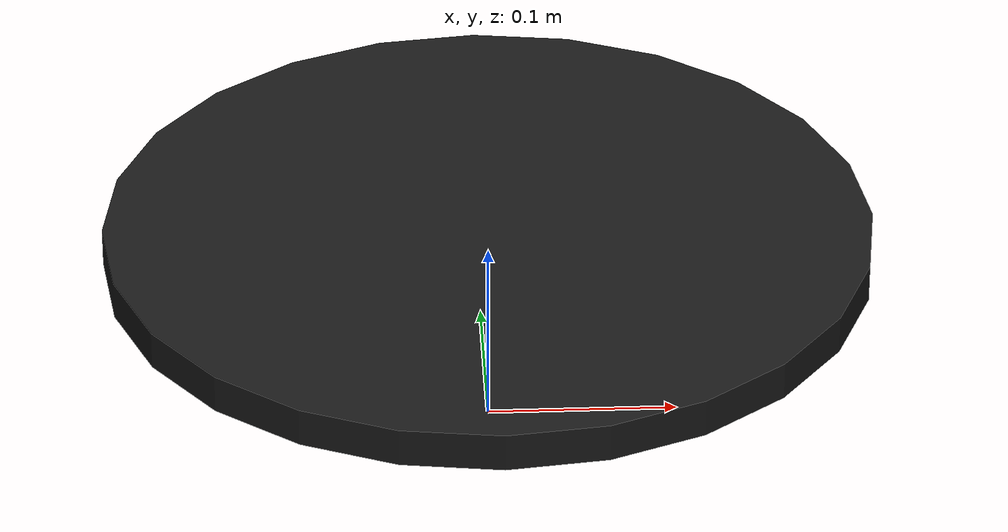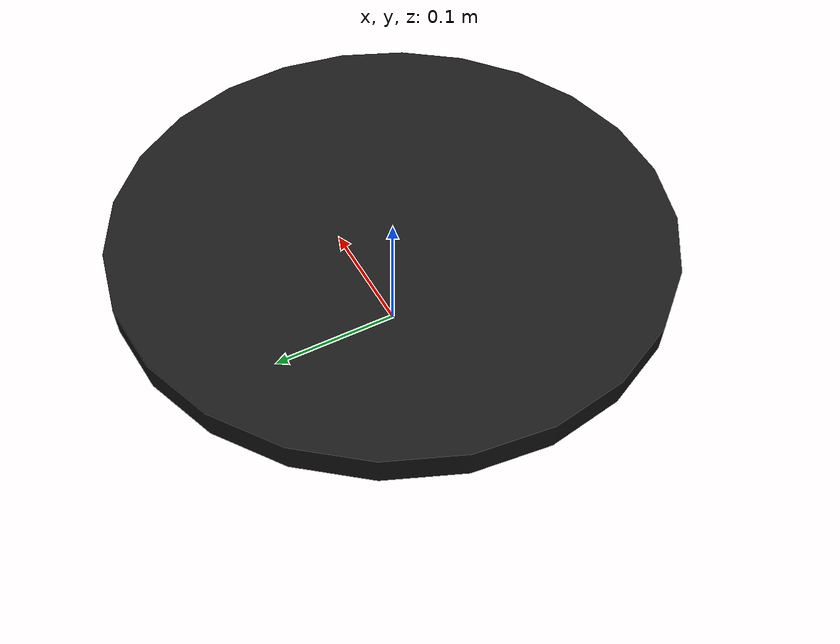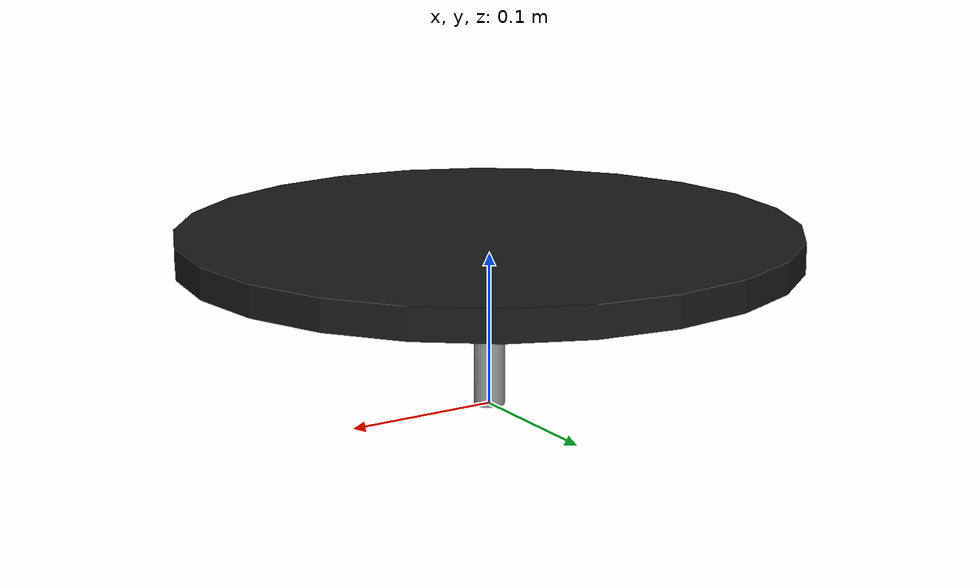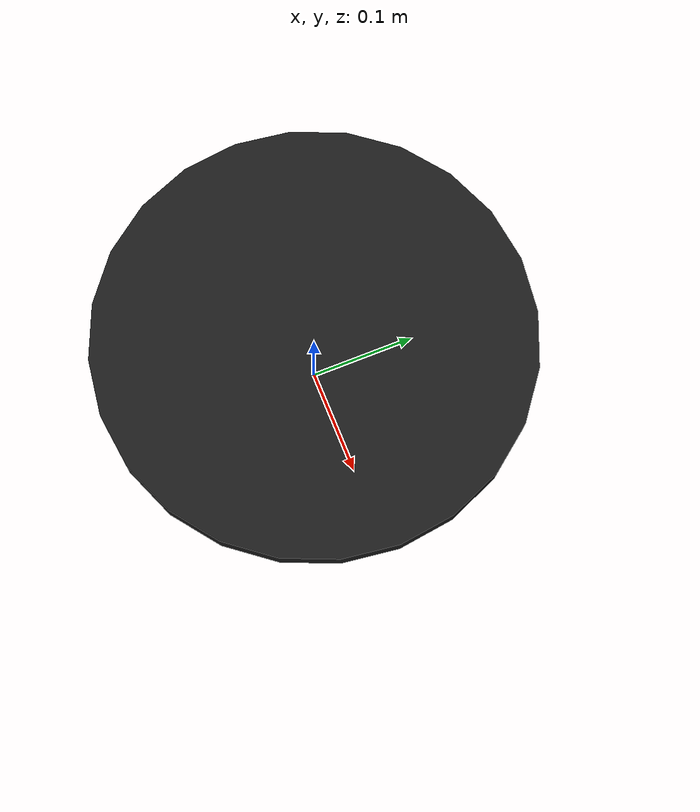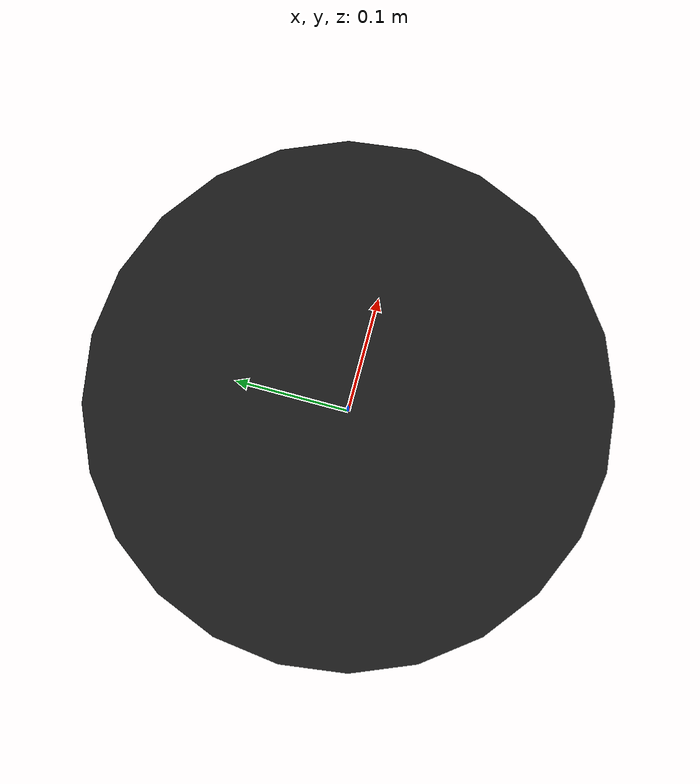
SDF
<?xml version="1.0"?>
<sdf version="1.7">
  <world name="plate_world">

    <model name="plate_model">

      <!-- Plate -->
      <link name="plate">
        <pose>0 0 0 0 0 0</pose>

        <inertial>
          <!-- CoM of the disk is 0.107 above the pivot/joint origin -->
          <pose>0 0 0.107 0 0 0</pose>
          <mass>0.85</mass>
          <inertia>
            <ixx>0.01029</ixx>
            <ixy>0</ixy>
            <ixz>0</ixz>
            <iyy>0.01029</iyy>
            <iyz>0</iyz>
            <izz>0.02057</izz>
          </inertia>
        </inertial>

        <visual name="plate_visual">
          <pose>0 0 0.107 0 0 0</pose>
          <geometry>
            <cylinder>
              <radius>0.2</radius>
              <length>0.02</length>
            </cylinder>
          </geometry>
          <material><diffuse>0.1 0.1 0.1 1</diffuse></material>
        </visual>

        <!-- Optional: visualize the rod so you can see the geometry -->
        <visual name="rod_visual">
          <pose>0 0 0.0535 0 0 0</pose>
          <geometry>
            <cylinder>
              <radius>0.01</radius>
              <length>0.107</length>
            </cylinder>
          </geometry>
          <material><diffuse>0.6 0.6 0.6 1</diffuse></material>
        </visual>

        <collision name="plate_collision">
          <pose>0 0 0.107 0 0 0</pose>
          <geometry>
            <cylinder>
              <radius>0.2</radius>
              <length>0.02</length>
            </cylinder>
          </geometry>
          <drake:proximity_properties>
            <drake:mu_static>0.5</drake:mu_static>
            <drake:mu_dynamic>0.5</drake:mu_dynamic>
            <drake:hunt_crossley_dissipation>2.0</drake:hunt_crossley_dissipation>
          </drake:proximity_properties>
        </collision>
      </link>

      <link name="link_x">
        <inertial>
          <mass>1.0e-6</mass>
          <inertia>
            <ixx>1.0e-6</ixx>
            <ixy>0</ixy>
            <ixz>0</ixz>
            <iyy>1.0e-6</iyy>
            <iyz>0</iyz>
            <izz>1.0e-6</izz>
          </inertia>
        </inertial>
      </link>
      <joint name="plate_x" type="prismatic">
        <parent>world</parent>
        <child>link_x</child>
        <axis>
          <xyz>1 0 0</xyz>
          <limit>
            <lower> -0.1 </lower>
            <upper> 0.1 </upper>
          </limit>
        </axis>
      </joint>

      <link name="link_y">
        <inertial>
          <mass>1.0e-6</mass>
          <inertia>
            <ixx>1.0e-6</ixx>
            <ixy>0</ixy>
            <ixz>0</ixz>
            <iyy>1.0e-6</iyy>
            <iyz>0</iyz>
            <izz>1.0e-6</izz>
          </inertia>
        </inertial>
      </link>
      <joint name="plate_y" type="prismatic">
        <parent>link_x</parent>
        <child>link_y</child>
        <axis>
          <xyz>0 1 0</xyz>
          <limit>
            <lower> -0.1 </lower>
            <upper> 0.1 </upper>
          </limit>
        </axis>
      </joint>

      <link name="link_z">
        <inertial>
          <mass>1.0e-6</mass>
          <inertia>
            <ixx>1.0e-6</ixx>
            <ixy>0</ixy>
            <ixz>0</ixz>
            <iyy>1.0e-6</iyy>
            <iyz>0</iyz>
            <izz>1.0e-6</izz>
          </inertia>
        </inertial>
      </link>
      <joint name="plate_z" type="prismatic">
        <parent>link_y</parent>
        <child>link_z</child>
        <axis>
          <xyz>0 0 1</xyz>
          <limit>
            <lower>-0.257</lower>   <!-- disk at -0.15 -->
            <upper> 0.043</upper>   <!-- disk at +0.15 -->
          </limit>
        </axis>
      </joint>

      <link name="link_roll">
        <inertial>
          <mass>1.0e-6</mass>
          <inertia>
            <ixx>1.0e-6</ixx>
            <ixy>0</ixy>
            <ixz>0</ixz>
            <iyy>1.0e-6</iyy>
            <iyz>0</iyz>
            <izz>1.0e-6</izz>
          </inertia>
        </inertial>
      </link>
      <joint name="plate_roll" type="revolute">
        <parent>link_z</parent>
        <child>link_roll</child>
        <axis>
          <xyz>1 0 0</xyz>
          <limit><lower>-0.6</lower><upper>0.6</upper></limit>
        </axis>
      </joint>

      <joint name="plate_pitch" type="revolute">
        <parent>link_roll</parent>
        <child>plate</child>
        <pose>0 0 0 0 0 0</pose>
        <axis>
          <xyz>0 1 0</xyz>
          <limit><lower>-0.6</lower><upper>0.6</upper></limit>
        </axis>
      </joint>

    </model>

  </world>
</sdf>
